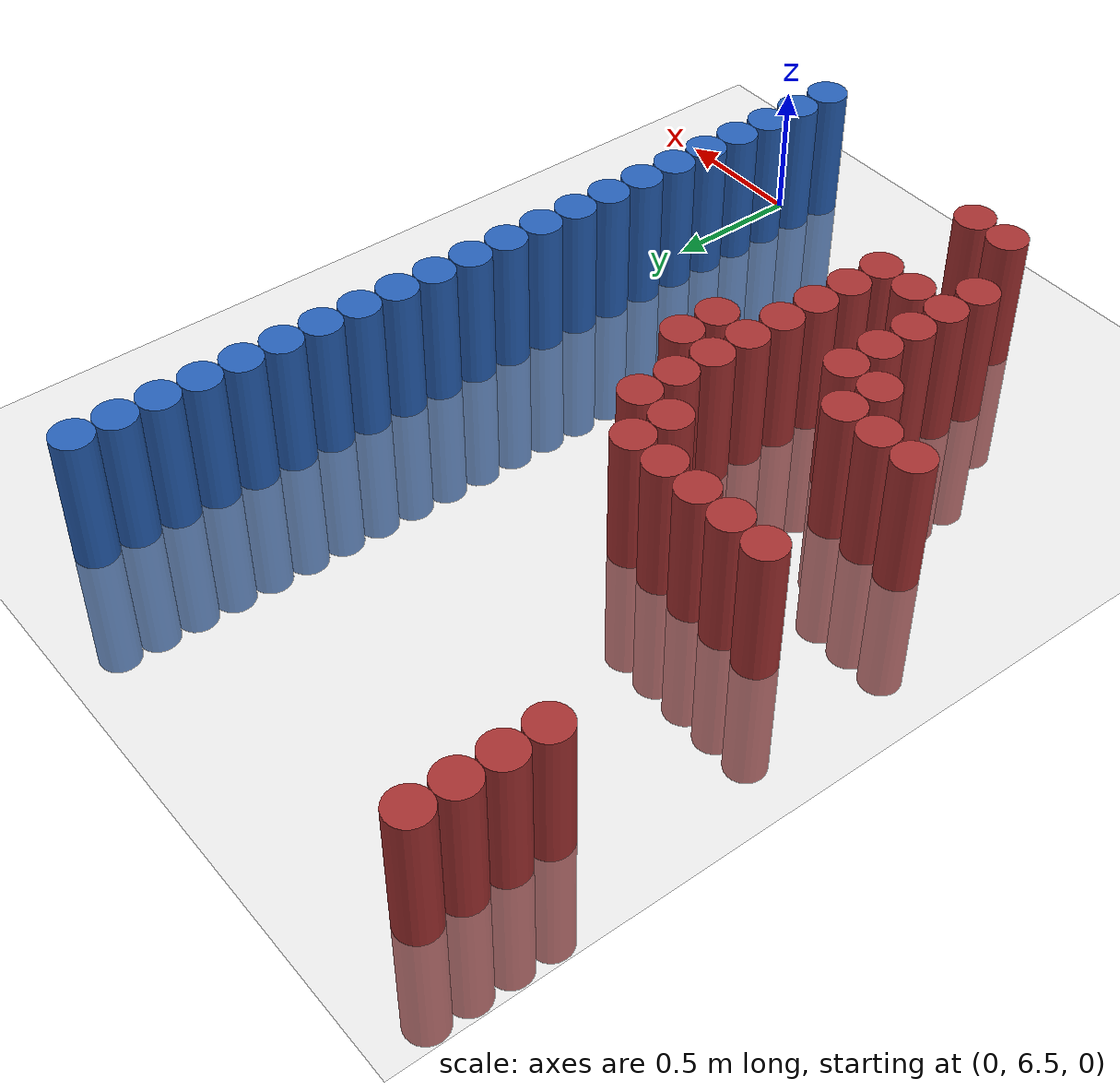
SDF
<sdf version="1.6">
 <world name="default">
  <model name="ground_plane">
   <static>1</static>
   <link name="link">
    <collision name="collision">
     <geometry><plane><normal>0 0 1</normal><size>100 100</size></plane></geometry>
     <surface><friction><ode><mu>100</mu><mu2>50</mu2></ode></friction></surface>
    </collision>
    <visual name="visual">
     <cast_shadows>0</cast_shadows>
     <geometry><plane><normal>0 0 1</normal><size>100 100</size></plane></geometry>
     <material>
      <script><uri>file://media/materials/scripts/gazebo.material</uri><name>Gazebo/Grey</name></script>
     </material>
    </visual>
   </link>
  </model>
  <model name="unit_cylinder_182">
   <static>1</static>
   <pose>-1.875000 9.075000 0.000000 0.000000 0.000000 0.000000</pose>
   <link name="link">
    <inertial>
     <mass>1</mass>
     <inertia><ixx>0.145833</ixx><ixy>0</ixy><ixz>0</ixz><iyy>0.145833</iyy><iyz>0</iyz><izz>0.125</izz></inertia>
    </inertial>
    <collision name="collision">
     <geometry><cylinder><radius>0.075000</radius><length>1</length></cylinder></geometry>
    </collision>
    <visual name="visual">
     <geometry><cylinder><radius>0.075000</radius><length>1</length></cylinder></geometry>
     <material>
      <ambient>0.648000 0.192000 0.192000 1</ambient>
      <diffuse>0.648000 0.192000 0.192000 1</diffuse>
     </material>
     <material>
      <script><name>Gazebo/Grey</name><uri>file://media/materials/scripts/gazebo.material</uri></script>
     </material>
    </visual>
   </link>
  </model>
  <model name="unit_cylinder_183">
   <static>1</static>
   <pose>-1.875000 9.225000 0.000000 0.000000 0.000000 0.000000</pose>
   <link name="link">
    <inertial>
     <mass>1</mass>
     <inertia><ixx>0.145833</ixx><ixy>0</ixy><ixz>0</ixz><iyy>0.145833</iyy><iyz>0</iyz><izz>0.125</izz></inertia>
    </inertial>
    <collision name="collision">
     <geometry><cylinder><radius>0.075000</radius><length>1</length></cylinder></geometry>
    </collision>
    <visual name="visual">
     <geometry><cylinder><radius>0.075000</radius><length>1</length></cylinder></geometry>
     <material>
      <ambient>0.648000 0.192000 0.192000 1</ambient>
      <diffuse>0.648000 0.192000 0.192000 1</diffuse>
     </material>
     <material>
      <script><name>Gazebo/Grey</name><uri>file://media/materials/scripts/gazebo.material</uri></script>
     </material>
    </visual>
   </link>
  </model>
  <model name="unit_cylinder_184">
   <static>1</static>
   <pose>-1.875000 9.375000 0.000000 0.000000 0.000000 0.000000</pose>
   <link name="link">
    <inertial>
     <mass>1</mass>
     <inertia><ixx>0.145833</ixx><ixy>0</ixy><ixz>0</ixz><iyy>0.145833</iyy><iyz>0</iyz><izz>0.125</izz></inertia>
    </inertial>
    <collision name="collision">
     <geometry><cylinder><radius>0.075000</radius><length>1</length></cylinder></geometry>
    </collision>
    <visual name="visual">
     <geometry><cylinder><radius>0.075000</radius><length>1</length></cylinder></geometry>
     <material>
      <ambient>0.648000 0.192000 0.192000 1</ambient>
      <diffuse>0.648000 0.192000 0.192000 1</diffuse>
     </material>
     <material>
      <script><name>Gazebo/Grey</name><uri>file://media/materials/scripts/gazebo.material</uri></script>
     </material>
    </visual>
   </link>
  </model>
  <model name="unit_cylinder_185">
   <static>1</static>
   <pose>-1.875000 9.525000 0.000000 0.000000 0.000000 0.000000</pose>
   <link name="link">
    <inertial>
     <mass>1</mass>
     <inertia><ixx>0.145833</ixx><ixy>0</ixy><ixz>0</ixz><iyy>0.145833</iyy><iyz>0</iyz><izz>0.125</izz></inertia>
    </inertial>
    <collision name="collision">
     <geometry><cylinder><radius>0.075000</radius><length>1</length></cylinder></geometry>
    </collision>
    <visual name="visual">
     <geometry><cylinder><radius>0.075000</radius><length>1</length></cylinder></geometry>
     <material>
      <ambient>0.648000 0.192000 0.192000 1</ambient>
      <diffuse>0.648000 0.192000 0.192000 1</diffuse>
     </material>
     <material>
      <script><name>Gazebo/Grey</name><uri>file://media/materials/scripts/gazebo.material</uri></script>
     </material>
    </visual>
   </link>
  </model>
  <model name="unit_cylinder_188">
   <static>1</static>
   <pose>-1.725000 7.575000 0.000000 0.000000 0.000000 0.000000</pose>
   <link name="link">
    <inertial>
     <mass>1</mass>
     <inertia><ixx>0.145833</ixx><ixy>0</ixy><ixz>0</ixz><iyy>0.145833</iyy><iyz>0</iyz><izz>0.125</izz></inertia>
    </inertial>
    <collision name="collision">
     <geometry><cylinder><radius>0.075000</radius><length>1</length></cylinder></geometry>
    </collision>
    <visual name="visual">
     <geometry><cylinder><radius>0.075000</radius><length>1</length></cylinder></geometry>
     <material>
      <ambient>0.648000 0.192000 0.192000 1</ambient>
      <diffuse>0.648000 0.192000 0.192000 1</diffuse>
     </material>
     <material>
      <script><name>Gazebo/Grey</name><uri>file://media/materials/scripts/gazebo.material</uri></script>
     </material>
    </visual>
   </link>
  </model>
  <model name="unit_cylinder_189">
   <static>1</static>
   <pose>-1.725000 8.175000 0.000000 0.000000 0.000000 0.000000</pose>
   <link name="link">
    <inertial>
     <mass>1</mass>
     <inertia><ixx>0.145833</ixx><ixy>0</ixy><ixz>0</ixz><iyy>0.145833</iyy><iyz>0</iyz><izz>0.125</izz></inertia>
    </inertial>
    <collision name="collision">
     <geometry><cylinder><radius>0.075000</radius><length>1</length></cylinder></geometry>
    </collision>
    <visual name="visual">
     <geometry><cylinder><radius>0.075000</radius><length>1</length></cylinder></geometry>
     <material>
      <ambient>0.648000 0.192000 0.192000 1</ambient>
      <diffuse>0.648000 0.192000 0.192000 1</diffuse>
     </material>
     <material>
      <script><name>Gazebo/Grey</name><uri>file://media/materials/scripts/gazebo.material</uri></script>
     </material>
    </visual>
   </link>
  </model>
  <model name="unit_cylinder_192">
   <static>1</static>
   <pose>-1.575000 7.575000 0.000000 0.000000 0.000000 0.000000</pose>
   <link name="link">
    <inertial>
     <mass>1</mass>
     <inertia><ixx>0.145833</ixx><ixy>0</ixy><ixz>0</ixz><iyy>0.145833</iyy><iyz>0</iyz><izz>0.125</izz></inertia>
    </inertial>
    <collision name="collision">
     <geometry><cylinder><radius>0.075000</radius><length>1</length></cylinder></geometry>
    </collision>
    <visual name="visual">
     <geometry><cylinder><radius>0.075000</radius><length>1</length></cylinder></geometry>
     <material>
      <ambient>0.648000 0.192000 0.192000 1</ambient>
      <diffuse>0.648000 0.192000 0.192000 1</diffuse>
     </material>
     <material>
      <script><name>Gazebo/Grey</name><uri>file://media/materials/scripts/gazebo.material</uri></script>
     </material>
    </visual>
   </link>
  </model>
  <model name="unit_cylinder_193">
   <static>1</static>
   <pose>-1.575000 8.175000 0.000000 0.000000 0.000000 0.000000</pose>
   <link name="link">
    <inertial>
     <mass>1</mass>
     <inertia><ixx>0.145833</ixx><ixy>0</ixy><ixz>0</ixz><iyy>0.145833</iyy><iyz>0</iyz><izz>0.125</izz></inertia>
    </inertial>
    <collision name="collision">
     <geometry><cylinder><radius>0.075000</radius><length>1</length></cylinder></geometry>
    </collision>
    <visual name="visual">
     <geometry><cylinder><radius>0.075000</radius><length>1</length></cylinder></geometry>
     <material>
      <ambient>0.648000 0.192000 0.192000 1</ambient>
      <diffuse>0.648000 0.192000 0.192000 1</diffuse>
     </material>
     <material>
      <script><name>Gazebo/Grey</name><uri>file://media/materials/scripts/gazebo.material</uri></script>
     </material>
    </visual>
   </link>
  </model>
  <model name="unit_cylinder_196">
   <static>1</static>
   <pose>-1.425000 7.425000 0.000000 0.000000 0.000000 0.000000</pose>
   <link name="link">
    <inertial>
     <mass>1</mass>
     <inertia><ixx>0.145833</ixx><ixy>0</ixy><ixz>0</ixz><iyy>0.145833</iyy><iyz>0</iyz><izz>0.125</izz></inertia>
    </inertial>
    <collision name="collision">
     <geometry><cylinder><radius>0.075000</radius><length>1</length></cylinder></geometry>
    </collision>
    <visual name="visual">
     <geometry><cylinder><radius>0.075000</radius><length>1</length></cylinder></geometry>
     <material>
      <ambient>0.648000 0.192000 0.192000 1</ambient>
      <diffuse>0.648000 0.192000 0.192000 1</diffuse>
     </material>
     <material>
      <script><name>Gazebo/Grey</name><uri>file://media/materials/scripts/gazebo.material</uri></script>
     </material>
    </visual>
   </link>
  </model>
  <model name="unit_cylinder_197">
   <static>1</static>
   <pose>-1.425000 7.575000 0.000000 0.000000 0.000000 0.000000</pose>
   <link name="link">
    <inertial>
     <mass>1</mass>
     <inertia><ixx>0.145833</ixx><ixy>0</ixy><ixz>0</ixz><iyy>0.145833</iyy><iyz>0</iyz><izz>0.125</izz></inertia>
    </inertial>
    <collision name="collision">
     <geometry><cylinder><radius>0.075000</radius><length>1</length></cylinder></geometry>
    </collision>
    <visual name="visual">
     <geometry><cylinder><radius>0.075000</radius><length>1</length></cylinder></geometry>
     <material>
      <ambient>0.648000 0.192000 0.192000 1</ambient>
      <diffuse>0.648000 0.192000 0.192000 1</diffuse>
     </material>
     <material>
      <script><name>Gazebo/Grey</name><uri>file://media/materials/scripts/gazebo.material</uri></script>
     </material>
    </visual>
   </link>
  </model>
  <model name="unit_cylinder_198">
   <static>1</static>
   <pose>-1.425000 8.175000 0.000000 0.000000 0.000000 0.000000</pose>
   <link name="link">
    <inertial>
     <mass>1</mass>
     <inertia><ixx>0.145833</ixx><ixy>0</ixy><ixz>0</ixz><iyy>0.145833</iyy><iyz>0</iyz><izz>0.125</izz></inertia>
    </inertial>
    <collision name="collision">
     <geometry><cylinder><radius>0.075000</radius><length>1</length></cylinder></geometry>
    </collision>
    <visual name="visual">
     <geometry><cylinder><radius>0.075000</radius><length>1</length></cylinder></geometry>
     <material>
      <ambient>0.648000 0.192000 0.192000 1</ambient>
      <diffuse>0.648000 0.192000 0.192000 1</diffuse>
     </material>
     <material>
      <script><name>Gazebo/Grey</name><uri>file://media/materials/scripts/gazebo.material</uri></script>
     </material>
    </visual>
   </link>
  </model>
  <model name="unit_cylinder_204">
   <static>1</static>
   <pose>-1.275000 6.825000 0.000000 0.000000 0.000000 0.000000</pose>
   <link name="link">
    <inertial>
     <mass>1</mass>
     <inertia><ixx>0.145833</ixx><ixy>0</ixy><ixz>0</ixz><iyy>0.145833</iyy><iyz>0</iyz><izz>0.125</izz></inertia>
    </inertial>
    <collision name="collision">
     <geometry><cylinder><radius>0.075000</radius><length>1</length></cylinder></geometry>
    </collision>
    <visual name="visual">
     <geometry><cylinder><radius>0.075000</radius><length>1</length></cylinder></geometry>
     <material>
      <ambient>0.648000 0.192000 0.192000 1</ambient>
      <diffuse>0.648000 0.192000 0.192000 1</diffuse>
     </material>
     <material>
      <script><name>Gazebo/Grey</name><uri>file://media/materials/scripts/gazebo.material</uri></script>
     </material>
    </visual>
   </link>
  </model>
  <model name="unit_cylinder_205">
   <static>1</static>
   <pose>-1.275000 6.975000 0.000000 0.000000 0.000000 0.000000</pose>
   <link name="link">
    <inertial>
     <mass>1</mass>
     <inertia><ixx>0.145833</ixx><ixy>0</ixy><ixz>0</ixz><iyy>0.145833</iyy><iyz>0</iyz><izz>0.125</izz></inertia>
    </inertial>
    <collision name="collision">
     <geometry><cylinder><radius>0.075000</radius><length>1</length></cylinder></geometry>
    </collision>
    <visual name="visual">
     <geometry><cylinder><radius>0.075000</radius><length>1</length></cylinder></geometry>
     <material>
      <ambient>0.648000 0.192000 0.192000 1</ambient>
      <diffuse>0.648000 0.192000 0.192000 1</diffuse>
     </material>
     <material>
      <script><name>Gazebo/Grey</name><uri>file://media/materials/scripts/gazebo.material</uri></script>
     </material>
    </visual>
   </link>
  </model>
  <model name="unit_cylinder_206">
   <static>1</static>
   <pose>-1.275000 7.125000 0.000000 0.000000 0.000000 0.000000</pose>
   <link name="link">
    <inertial>
     <mass>1</mass>
     <inertia><ixx>0.145833</ixx><ixy>0</ixy><ixz>0</ixz><iyy>0.145833</iyy><iyz>0</iyz><izz>0.125</izz></inertia>
    </inertial>
    <collision name="collision">
     <geometry><cylinder><radius>0.075000</radius><length>1</length></cylinder></geometry>
    </collision>
    <visual name="visual">
     <geometry><cylinder><radius>0.075000</radius><length>1</length></cylinder></geometry>
     <material>
      <ambient>0.648000 0.192000 0.192000 1</ambient>
      <diffuse>0.648000 0.192000 0.192000 1</diffuse>
     </material>
     <material>
      <script><name>Gazebo/Grey</name><uri>file://media/materials/scripts/gazebo.material</uri></script>
     </material>
    </visual>
   </link>
  </model>
  <model name="unit_cylinder_207">
   <static>1</static>
   <pose>-1.275000 7.275000 0.000000 0.000000 0.000000 0.000000</pose>
   <link name="link">
    <inertial>
     <mass>1</mass>
     <inertia><ixx>0.145833</ixx><ixy>0</ixy><ixz>0</ixz><iyy>0.145833</iyy><iyz>0</iyz><izz>0.125</izz></inertia>
    </inertial>
    <collision name="collision">
     <geometry><cylinder><radius>0.075000</radius><length>1</length></cylinder></geometry>
    </collision>
    <visual name="visual">
     <geometry><cylinder><radius>0.075000</radius><length>1</length></cylinder></geometry>
     <material>
      <ambient>0.648000 0.192000 0.192000 1</ambient>
      <diffuse>0.648000 0.192000 0.192000 1</diffuse>
     </material>
     <material>
      <script><name>Gazebo/Grey</name><uri>file://media/materials/scripts/gazebo.material</uri></script>
     </material>
    </visual>
   </link>
  </model>
  <model name="unit_cylinder_208">
   <static>1</static>
   <pose>-1.275000 7.425000 0.000000 0.000000 0.000000 0.000000</pose>
   <link name="link">
    <inertial>
     <mass>1</mass>
     <inertia><ixx>0.145833</ixx><ixy>0</ixy><ixz>0</ixz><iyy>0.145833</iyy><iyz>0</iyz><izz>0.125</izz></inertia>
    </inertial>
    <collision name="collision">
     <geometry><cylinder><radius>0.075000</radius><length>1</length></cylinder></geometry>
    </collision>
    <visual name="visual">
     <geometry><cylinder><radius>0.075000</radius><length>1</length></cylinder></geometry>
     <material>
      <ambient>0.648000 0.192000 0.192000 1</ambient>
      <diffuse>0.648000 0.192000 0.192000 1</diffuse>
     </material>
     <material>
      <script><name>Gazebo/Grey</name><uri>file://media/materials/scripts/gazebo.material</uri></script>
     </material>
    </visual>
   </link>
  </model>
  <model name="unit_cylinder_209">
   <static>1</static>
   <pose>-1.275000 8.175000 0.000000 0.000000 0.000000 0.000000</pose>
   <link name="link">
    <inertial>
     <mass>1</mass>
     <inertia><ixx>0.145833</ixx><ixy>0</ixy><ixz>0</ixz><iyy>0.145833</iyy><iyz>0</iyz><izz>0.125</izz></inertia>
    </inertial>
    <collision name="collision">
     <geometry><cylinder><radius>0.075000</radius><length>1</length></cylinder></geometry>
    </collision>
    <visual name="visual">
     <geometry><cylinder><radius>0.075000</radius><length>1</length></cylinder></geometry>
     <material>
      <ambient>0.648000 0.192000 0.192000 1</ambient>
      <diffuse>0.648000 0.192000 0.192000 1</diffuse>
     </material>
     <material>
      <script><name>Gazebo/Grey</name><uri>file://media/materials/scripts/gazebo.material</uri></script>
     </material>
    </visual>
   </link>
  </model>
  <model name="unit_cylinder_213">
   <static>1</static>
   <pose>-1.125000 6.525000 0.000000 0.000000 0.000000 0.000000</pose>
   <link name="link">
    <inertial>
     <mass>1</mass>
     <inertia><ixx>0.145833</ixx><ixy>0</ixy><ixz>0</ixz><iyy>0.145833</iyy><iyz>0</iyz><izz>0.125</izz></inertia>
    </inertial>
    <collision name="collision">
     <geometry><cylinder><radius>0.075000</radius><length>1</length></cylinder></geometry>
    </collision>
    <visual name="visual">
     <geometry><cylinder><radius>0.075000</radius><length>1</length></cylinder></geometry>
     <material>
      <ambient>0.648000 0.192000 0.192000 1</ambient>
      <diffuse>0.648000 0.192000 0.192000 1</diffuse>
     </material>
     <material>
      <script><name>Gazebo/Grey</name><uri>file://media/materials/scripts/gazebo.material</uri></script>
     </material>
    </visual>
   </link>
  </model>
  <model name="unit_cylinder_214">
   <static>1</static>
   <pose>-1.125000 6.975000 0.000000 0.000000 0.000000 0.000000</pose>
   <link name="link">
    <inertial>
     <mass>1</mass>
     <inertia><ixx>0.145833</ixx><ixy>0</ixy><ixz>0</ixz><iyy>0.145833</iyy><iyz>0</iyz><izz>0.125</izz></inertia>
    </inertial>
    <collision name="collision">
     <geometry><cylinder><radius>0.075000</radius><length>1</length></cylinder></geometry>
    </collision>
    <visual name="visual">
     <geometry><cylinder><radius>0.075000</radius><length>1</length></cylinder></geometry>
     <material>
      <ambient>0.648000 0.192000 0.192000 1</ambient>
      <diffuse>0.648000 0.192000 0.192000 1</diffuse>
     </material>
     <material>
      <script><name>Gazebo/Grey</name><uri>file://media/materials/scripts/gazebo.material</uri></script>
     </material>
    </visual>
   </link>
  </model>
  <model name="unit_cylinder_215">
   <static>1</static>
   <pose>-1.125000 8.025000 0.000000 0.000000 0.000000 0.000000</pose>
   <link name="link">
    <inertial>
     <mass>1</mass>
     <inertia><ixx>0.145833</ixx><ixy>0</ixy><ixz>0</ixz><iyy>0.145833</iyy><iyz>0</iyz><izz>0.125</izz></inertia>
    </inertial>
    <collision name="collision">
     <geometry><cylinder><radius>0.075000</radius><length>1</length></cylinder></geometry>
    </collision>
    <visual name="visual">
     <geometry><cylinder><radius>0.075000</radius><length>1</length></cylinder></geometry>
     <material>
      <ambient>0.648000 0.192000 0.192000 1</ambient>
      <diffuse>0.648000 0.192000 0.192000 1</diffuse>
     </material>
     <material>
      <script><name>Gazebo/Grey</name><uri>file://media/materials/scripts/gazebo.material</uri></script>
     </material>
    </visual>
   </link>
  </model>
  <model name="unit_cylinder_216">
   <static>1</static>
   <pose>-1.125000 8.175000 0.000000 0.000000 0.000000 0.000000</pose>
   <link name="link">
    <inertial>
     <mass>1</mass>
     <inertia><ixx>0.145833</ixx><ixy>0</ixy><ixz>0</ixz><iyy>0.145833</iyy><iyz>0</iyz><izz>0.125</izz></inertia>
    </inertial>
    <collision name="collision">
     <geometry><cylinder><radius>0.075000</radius><length>1</length></cylinder></geometry>
    </collision>
    <visual name="visual">
     <geometry><cylinder><radius>0.075000</radius><length>1</length></cylinder></geometry>
     <material>
      <ambient>0.648000 0.192000 0.192000 1</ambient>
      <diffuse>0.648000 0.192000 0.192000 1</diffuse>
     </material>
     <material>
      <script><name>Gazebo/Grey</name><uri>file://media/materials/scripts/gazebo.material</uri></script>
     </material>
    </visual>
   </link>
  </model>
  <model name="unit_cylinder_220">
   <static>1</static>
   <pose>-0.975000 6.525000 0.000000 0.000000 0.000000 0.000000</pose>
   <link name="link">
    <inertial>
     <mass>1</mass>
     <inertia><ixx>0.145833</ixx><ixy>0</ixy><ixz>0</ixz><iyy>0.145833</iyy><iyz>0</iyz><izz>0.125</izz></inertia>
    </inertial>
    <collision name="collision">
     <geometry><cylinder><radius>0.075000</radius><length>1</length></cylinder></geometry>
    </collision>
    <visual name="visual">
     <geometry><cylinder><radius>0.075000</radius><length>1</length></cylinder></geometry>
     <material>
      <ambient>0.648000 0.192000 0.192000 1</ambient>
      <diffuse>0.648000 0.192000 0.192000 1</diffuse>
     </material>
     <material>
      <script><name>Gazebo/Grey</name><uri>file://media/materials/scripts/gazebo.material</uri></script>
     </material>
    </visual>
   </link>
  </model>
  <model name="unit_cylinder_221">
   <static>1</static>
   <pose>-0.975000 6.975000 0.000000 0.000000 0.000000 0.000000</pose>
   <link name="link">
    <inertial>
     <mass>1</mass>
     <inertia><ixx>0.145833</ixx><ixy>0</ixy><ixz>0</ixz><iyy>0.145833</iyy><iyz>0</iyz><izz>0.125</izz></inertia>
    </inertial>
    <collision name="collision">
     <geometry><cylinder><radius>0.075000</radius><length>1</length></cylinder></geometry>
    </collision>
    <visual name="visual">
     <geometry><cylinder><radius>0.075000</radius><length>1</length></cylinder></geometry>
     <material>
      <ambient>0.648000 0.192000 0.192000 1</ambient>
      <diffuse>0.648000 0.192000 0.192000 1</diffuse>
     </material>
     <material>
      <script><name>Gazebo/Grey</name><uri>file://media/materials/scripts/gazebo.material</uri></script>
     </material>
    </visual>
   </link>
  </model>
  <model name="unit_cylinder_222">
   <static>1</static>
   <pose>-0.975000 7.125000 0.000000 0.000000 0.000000 0.000000</pose>
   <link name="link">
    <inertial>
     <mass>1</mass>
     <inertia><ixx>0.145833</ixx><ixy>0</ixy><ixz>0</ixz><iyy>0.145833</iyy><iyz>0</iyz><izz>0.125</izz></inertia>
    </inertial>
    <collision name="collision">
     <geometry><cylinder><radius>0.075000</radius><length>1</length></cylinder></geometry>
    </collision>
    <visual name="visual">
     <geometry><cylinder><radius>0.075000</radius><length>1</length></cylinder></geometry>
     <material>
      <ambient>0.648000 0.192000 0.192000 1</ambient>
      <diffuse>0.648000 0.192000 0.192000 1</diffuse>
     </material>
     <material>
      <script><name>Gazebo/Grey</name><uri>file://media/materials/scripts/gazebo.material</uri></script>
     </material>
    </visual>
   </link>
  </model>
  <model name="unit_cylinder_223">
   <static>1</static>
   <pose>-0.975000 7.275000 0.000000 0.000000 0.000000 0.000000</pose>
   <link name="link">
    <inertial>
     <mass>1</mass>
     <inertia><ixx>0.145833</ixx><ixy>0</ixy><ixz>0</ixz><iyy>0.145833</iyy><iyz>0</iyz><izz>0.125</izz></inertia>
    </inertial>
    <collision name="collision">
     <geometry><cylinder><radius>0.075000</radius><length>1</length></cylinder></geometry>
    </collision>
    <visual name="visual">
     <geometry><cylinder><radius>0.075000</radius><length>1</length></cylinder></geometry>
     <material>
      <ambient>0.648000 0.192000 0.192000 1</ambient>
      <diffuse>0.648000 0.192000 0.192000 1</diffuse>
     </material>
     <material>
      <script><name>Gazebo/Grey</name><uri>file://media/materials/scripts/gazebo.material</uri></script>
     </material>
    </visual>
   </link>
  </model>
  <model name="unit_cylinder_224">
   <static>1</static>
   <pose>-0.975000 7.425000 0.000000 0.000000 0.000000 0.000000</pose>
   <link name="link">
    <inertial>
     <mass>1</mass>
     <inertia><ixx>0.145833</ixx><ixy>0</ixy><ixz>0</ixz><iyy>0.145833</iyy><iyz>0</iyz><izz>0.125</izz></inertia>
    </inertial>
    <collision name="collision">
     <geometry><cylinder><radius>0.075000</radius><length>1</length></cylinder></geometry>
    </collision>
    <visual name="visual">
     <geometry><cylinder><radius>0.075000</radius><length>1</length></cylinder></geometry>
     <material>
      <ambient>0.648000 0.192000 0.192000 1</ambient>
      <diffuse>0.648000 0.192000 0.192000 1</diffuse>
     </material>
     <material>
      <script><name>Gazebo/Grey</name><uri>file://media/materials/scripts/gazebo.material</uri></script>
     </material>
    </visual>
   </link>
  </model>
  <model name="unit_cylinder_225">
   <static>1</static>
   <pose>-0.975000 7.575000 0.000000 0.000000 0.000000 0.000000</pose>
   <link name="link">
    <inertial>
     <mass>1</mass>
     <inertia><ixx>0.145833</ixx><ixy>0</ixy><ixz>0</ixz><iyy>0.145833</iyy><iyz>0</iyz><izz>0.125</izz></inertia>
    </inertial>
    <collision name="collision">
     <geometry><cylinder><radius>0.075000</radius><length>1</length></cylinder></geometry>
    </collision>
    <visual name="visual">
     <geometry><cylinder><radius>0.075000</radius><length>1</length></cylinder></geometry>
     <material>
      <ambient>0.648000 0.192000 0.192000 1</ambient>
      <diffuse>0.648000 0.192000 0.192000 1</diffuse>
     </material>
     <material>
      <script><name>Gazebo/Grey</name><uri>file://media/materials/scripts/gazebo.material</uri></script>
     </material>
    </visual>
   </link>
  </model>
  <model name="unit_cylinder_226">
   <static>1</static>
   <pose>-0.975000 7.725000 0.000000 0.000000 0.000000 0.000000</pose>
   <link name="link">
    <inertial>
     <mass>1</mass>
     <inertia><ixx>0.145833</ixx><ixy>0</ixy><ixz>0</ixz><iyy>0.145833</iyy><iyz>0</iyz><izz>0.125</izz></inertia>
    </inertial>
    <collision name="collision">
     <geometry><cylinder><radius>0.075000</radius><length>1</length></cylinder></geometry>
    </collision>
    <visual name="visual">
     <geometry><cylinder><radius>0.075000</radius><length>1</length></cylinder></geometry>
     <material>
      <ambient>0.648000 0.192000 0.192000 1</ambient>
      <diffuse>0.648000 0.192000 0.192000 1</diffuse>
     </material>
     <material>
      <script><name>Gazebo/Grey</name><uri>file://media/materials/scripts/gazebo.material</uri></script>
     </material>
    </visual>
   </link>
  </model>
  <model name="unit_cylinder_227">
   <static>1</static>
   <pose>-0.975000 7.875000 0.000000 0.000000 0.000000 0.000000</pose>
   <link name="link">
    <inertial>
     <mass>1</mass>
     <inertia><ixx>0.145833</ixx><ixy>0</ixy><ixz>0</ixz><iyy>0.145833</iyy><iyz>0</iyz><izz>0.125</izz></inertia>
    </inertial>
    <collision name="collision">
     <geometry><cylinder><radius>0.075000</radius><length>1</length></cylinder></geometry>
    </collision>
    <visual name="visual">
     <geometry><cylinder><radius>0.075000</radius><length>1</length></cylinder></geometry>
     <material>
      <ambient>0.648000 0.192000 0.192000 1</ambient>
      <diffuse>0.648000 0.192000 0.192000 1</diffuse>
     </material>
     <material>
      <script><name>Gazebo/Grey</name><uri>file://media/materials/scripts/gazebo.material</uri></script>
     </material>
    </visual>
   </link>
  </model>
  <model name="unit_cylinder_228">
   <static>1</static>
   <pose>-0.975000 8.025000 0.000000 0.000000 0.000000 0.000000</pose>
   <link name="link">
    <inertial>
     <mass>1</mass>
     <inertia><ixx>0.145833</ixx><ixy>0</ixy><ixz>0</ixz><iyy>0.145833</iyy><iyz>0</iyz><izz>0.125</izz></inertia>
    </inertial>
    <collision name="collision">
     <geometry><cylinder><radius>0.075000</radius><length>1</length></cylinder></geometry>
    </collision>
    <visual name="visual">
     <geometry><cylinder><radius>0.075000</radius><length>1</length></cylinder></geometry>
     <material>
      <ambient>0.648000 0.192000 0.192000 1</ambient>
      <diffuse>0.648000 0.192000 0.192000 1</diffuse>
     </material>
     <material>
      <script><name>Gazebo/Grey</name><uri>file://media/materials/scripts/gazebo.material</uri></script>
     </material>
    </visual>
   </link>
  </model>
  <model name="unit_cylinder_235">
   <static>1</static>
   <pose>-0.825000 7.575000 0.000000 0.000000 0.000000 0.000000</pose>
   <link name="link">
    <inertial>
     <mass>1</mass>
     <inertia><ixx>0.145833</ixx><ixy>0</ixy><ixz>0</ixz><iyy>0.145833</iyy><iyz>0</iyz><izz>0.125</izz></inertia>
    </inertial>
    <collision name="collision">
     <geometry><cylinder><radius>0.075000</radius><length>1</length></cylinder></geometry>
    </collision>
    <visual name="visual">
     <geometry><cylinder><radius>0.075000</radius><length>1</length></cylinder></geometry>
     <material>
      <ambient>0.648000 0.192000 0.192000 1</ambient>
      <diffuse>0.648000 0.192000 0.192000 1</diffuse>
     </material>
     <material>
      <script><name>Gazebo/Grey</name><uri>file://media/materials/scripts/gazebo.material</uri></script>
     </material>
    </visual>
   </link>
  </model>
  <model name="unit_cylinder_236">
   <static>1</static>
   <pose>-0.825000 7.725000 0.000000 0.000000 0.000000 0.000000</pose>
   <link name="link">
    <inertial>
     <mass>1</mass>
     <inertia><ixx>0.145833</ixx><ixy>0</ixy><ixz>0</ixz><iyy>0.145833</iyy><iyz>0</iyz><izz>0.125</izz></inertia>
    </inertial>
    <collision name="collision">
     <geometry><cylinder><radius>0.075000</radius><length>1</length></cylinder></geometry>
    </collision>
    <visual name="visual">
     <geometry><cylinder><radius>0.075000</radius><length>1</length></cylinder></geometry>
     <material>
      <ambient>0.648000 0.192000 0.192000 1</ambient>
      <diffuse>0.648000 0.192000 0.192000 1</diffuse>
     </material>
     <material>
      <script><name>Gazebo/Grey</name><uri>file://media/materials/scripts/gazebo.material</uri></script>
     </material>
    </visual>
   </link>
  </model>
  <model name="unit_cylinder_246">
   <static>1</static>
   <pose>-0.075000 6.375000 0.000000 0.000000 0.000000 0.000000</pose>
   <link name="link">
    <inertial>
     <mass>1</mass>
     <inertia><ixx>0.145833</ixx><ixy>0</ixy><ixz>0</ixz><iyy>0.145833</iyy><iyz>0</iyz><izz>0.125</izz></inertia>
    </inertial>
    <collision name="collision">
     <geometry><cylinder><radius>0.075000</radius><length>1</length></cylinder></geometry>
    </collision>
    <visual name="visual">
     <geometry><cylinder><radius>0.075000</radius><length>1</length></cylinder></geometry>
     <material>
      <ambient>0.152000 0.379000 0.720000 1</ambient>
      <diffuse>0.152000 0.379000 0.720000 1</diffuse>
     </material>
     <material>
      <script><name>Gazebo/Grey</name><uri>file://media/materials/scripts/gazebo.material</uri></script>
     </material>
    </visual>
   </link>
  </model>
  <model name="unit_cylinder_247">
   <static>1</static>
   <pose>-0.075000 6.525000 0.000000 0.000000 0.000000 0.000000</pose>
   <link name="link">
    <inertial>
     <mass>1</mass>
     <inertia><ixx>0.145833</ixx><ixy>0</ixy><ixz>0</ixz><iyy>0.145833</iyy><iyz>0</iyz><izz>0.125</izz></inertia>
    </inertial>
    <collision name="collision">
     <geometry><cylinder><radius>0.075000</radius><length>1</length></cylinder></geometry>
    </collision>
    <visual name="visual">
     <geometry><cylinder><radius>0.075000</radius><length>1</length></cylinder></geometry>
     <material>
      <ambient>0.152000 0.379000 0.720000 1</ambient>
      <diffuse>0.152000 0.379000 0.720000 1</diffuse>
     </material>
     <material>
      <script><name>Gazebo/Grey</name><uri>file://media/materials/scripts/gazebo.material</uri></script>
     </material>
    </visual>
   </link>
  </model>
  <model name="unit_cylinder_248">
   <static>1</static>
   <pose>-0.075000 6.675000 0.000000 0.000000 0.000000 0.000000</pose>
   <link name="link">
    <inertial>
     <mass>1</mass>
     <inertia><ixx>0.145833</ixx><ixy>0</ixy><ixz>0</ixz><iyy>0.145833</iyy><iyz>0</iyz><izz>0.125</izz></inertia>
    </inertial>
    <collision name="collision">
     <geometry><cylinder><radius>0.075000</radius><length>1</length></cylinder></geometry>
    </collision>
    <visual name="visual">
     <geometry><cylinder><radius>0.075000</radius><length>1</length></cylinder></geometry>
     <material>
      <ambient>0.152000 0.379000 0.720000 1</ambient>
      <diffuse>0.152000 0.379000 0.720000 1</diffuse>
     </material>
     <material>
      <script><name>Gazebo/Grey</name><uri>file://media/materials/scripts/gazebo.material</uri></script>
     </material>
    </visual>
   </link>
  </model>
  <model name="unit_cylinder_249">
   <static>1</static>
   <pose>-0.075000 6.825000 0.000000 0.000000 0.000000 0.000000</pose>
   <link name="link">
    <inertial>
     <mass>1</mass>
     <inertia><ixx>0.145833</ixx><ixy>0</ixy><ixz>0</ixz><iyy>0.145833</iyy><iyz>0</iyz><izz>0.125</izz></inertia>
    </inertial>
    <collision name="collision">
     <geometry><cylinder><radius>0.075000</radius><length>1</length></cylinder></geometry>
    </collision>
    <visual name="visual">
     <geometry><cylinder><radius>0.075000</radius><length>1</length></cylinder></geometry>
     <material>
      <ambient>0.152000 0.379000 0.720000 1</ambient>
      <diffuse>0.152000 0.379000 0.720000 1</diffuse>
     </material>
     <material>
      <script><name>Gazebo/Grey</name><uri>file://media/materials/scripts/gazebo.material</uri></script>
     </material>
    </visual>
   </link>
  </model>
  <model name="unit_cylinder_250">
   <static>1</static>
   <pose>-0.075000 6.975000 0.000000 0.000000 0.000000 0.000000</pose>
   <link name="link">
    <inertial>
     <mass>1</mass>
     <inertia><ixx>0.145833</ixx><ixy>0</ixy><ixz>0</ixz><iyy>0.145833</iyy><iyz>0</iyz><izz>0.125</izz></inertia>
    </inertial>
    <collision name="collision">
     <geometry><cylinder><radius>0.075000</radius><length>1</length></cylinder></geometry>
    </collision>
    <visual name="visual">
     <geometry><cylinder><radius>0.075000</radius><length>1</length></cylinder></geometry>
     <material>
      <ambient>0.152000 0.379000 0.720000 1</ambient>
      <diffuse>0.152000 0.379000 0.720000 1</diffuse>
     </material>
     <material>
      <script><name>Gazebo/Grey</name><uri>file://media/materials/scripts/gazebo.material</uri></script>
     </material>
    </visual>
   </link>
  </model>
  <model name="unit_cylinder_251">
   <static>1</static>
   <pose>-0.075000 7.125000 0.000000 0.000000 0.000000 0.000000</pose>
   <link name="link">
    <inertial>
     <mass>1</mass>
     <inertia><ixx>0.145833</ixx><ixy>0</ixy><ixz>0</ixz><iyy>0.145833</iyy><iyz>0</iyz><izz>0.125</izz></inertia>
    </inertial>
    <collision name="collision">
     <geometry><cylinder><radius>0.075000</radius><length>1</length></cylinder></geometry>
    </collision>
    <visual name="visual">
     <geometry><cylinder><radius>0.075000</radius><length>1</length></cylinder></geometry>
     <material>
      <ambient>0.152000 0.379000 0.720000 1</ambient>
      <diffuse>0.152000 0.379000 0.720000 1</diffuse>
     </material>
     <material>
      <script><name>Gazebo/Grey</name><uri>file://media/materials/scripts/gazebo.material</uri></script>
     </material>
    </visual>
   </link>
  </model>
  <model name="unit_cylinder_252">
   <static>1</static>
   <pose>-0.075000 7.275000 0.000000 0.000000 0.000000 0.000000</pose>
   <link name="link">
    <inertial>
     <mass>1</mass>
     <inertia><ixx>0.145833</ixx><ixy>0</ixy><ixz>0</ixz><iyy>0.145833</iyy><iyz>0</iyz><izz>0.125</izz></inertia>
    </inertial>
    <collision name="collision">
     <geometry><cylinder><radius>0.075000</radius><length>1</length></cylinder></geometry>
    </collision>
    <visual name="visual">
     <geometry><cylinder><radius>0.075000</radius><length>1</length></cylinder></geometry>
     <material>
      <ambient>0.152000 0.379000 0.720000 1</ambient>
      <diffuse>0.152000 0.379000 0.720000 1</diffuse>
     </material>
     <material>
      <script><name>Gazebo/Grey</name><uri>file://media/materials/scripts/gazebo.material</uri></script>
     </material>
    </visual>
   </link>
  </model>
  <model name="unit_cylinder_253">
   <static>1</static>
   <pose>-0.075000 7.425000 0.000000 0.000000 0.000000 0.000000</pose>
   <link name="link">
    <inertial>
     <mass>1</mass>
     <inertia><ixx>0.145833</ixx><ixy>0</ixy><ixz>0</ixz><iyy>0.145833</iyy><iyz>0</iyz><izz>0.125</izz></inertia>
    </inertial>
    <collision name="collision">
     <geometry><cylinder><radius>0.075000</radius><length>1</length></cylinder></geometry>
    </collision>
    <visual name="visual">
     <geometry><cylinder><radius>0.075000</radius><length>1</length></cylinder></geometry>
     <material>
      <ambient>0.152000 0.379000 0.720000 1</ambient>
      <diffuse>0.152000 0.379000 0.720000 1</diffuse>
     </material>
     <material>
      <script><name>Gazebo/Grey</name><uri>file://media/materials/scripts/gazebo.material</uri></script>
     </material>
    </visual>
   </link>
  </model>
  <model name="unit_cylinder_254">
   <static>1</static>
   <pose>-0.075000 7.575000 0.000000 0.000000 0.000000 0.000000</pose>
   <link name="link">
    <inertial>
     <mass>1</mass>
     <inertia><ixx>0.145833</ixx><ixy>0</ixy><ixz>0</ixz><iyy>0.145833</iyy><iyz>0</iyz><izz>0.125</izz></inertia>
    </inertial>
    <collision name="collision">
     <geometry><cylinder><radius>0.075000</radius><length>1</length></cylinder></geometry>
    </collision>
    <visual name="visual">
     <geometry><cylinder><radius>0.075000</radius><length>1</length></cylinder></geometry>
     <material>
      <ambient>0.152000 0.379000 0.720000 1</ambient>
      <diffuse>0.152000 0.379000 0.720000 1</diffuse>
     </material>
     <material>
      <script><name>Gazebo/Grey</name><uri>file://media/materials/scripts/gazebo.material</uri></script>
     </material>
    </visual>
   </link>
  </model>
  <model name="unit_cylinder_255">
   <static>1</static>
   <pose>-0.075000 7.725000 0.000000 0.000000 0.000000 0.000000</pose>
   <link name="link">
    <inertial>
     <mass>1</mass>
     <inertia><ixx>0.145833</ixx><ixy>0</ixy><ixz>0</ixz><iyy>0.145833</iyy><iyz>0</iyz><izz>0.125</izz></inertia>
    </inertial>
    <collision name="collision">
     <geometry><cylinder><radius>0.075000</radius><length>1</length></cylinder></geometry>
    </collision>
    <visual name="visual">
     <geometry><cylinder><radius>0.075000</radius><length>1</length></cylinder></geometry>
     <material>
      <ambient>0.152000 0.379000 0.720000 1</ambient>
      <diffuse>0.152000 0.379000 0.720000 1</diffuse>
     </material>
     <material>
      <script><name>Gazebo/Grey</name><uri>file://media/materials/scripts/gazebo.material</uri></script>
     </material>
    </visual>
   </link>
  </model>
  <model name="unit_cylinder_256">
   <static>1</static>
   <pose>-0.075000 7.875000 0.000000 0.000000 0.000000 0.000000</pose>
   <link name="link">
    <inertial>
     <mass>1</mass>
     <inertia><ixx>0.145833</ixx><ixy>0</ixy><ixz>0</ixz><iyy>0.145833</iyy><iyz>0</iyz><izz>0.125</izz></inertia>
    </inertial>
    <collision name="collision">
     <geometry><cylinder><radius>0.075000</radius><length>1</length></cylinder></geometry>
    </collision>
    <visual name="visual">
     <geometry><cylinder><radius>0.075000</radius><length>1</length></cylinder></geometry>
     <material>
      <ambient>0.152000 0.379000 0.720000 1</ambient>
      <diffuse>0.152000 0.379000 0.720000 1</diffuse>
     </material>
     <material>
      <script><name>Gazebo/Grey</name><uri>file://media/materials/scripts/gazebo.material</uri></script>
     </material>
    </visual>
   </link>
  </model>
  <model name="unit_cylinder_257">
   <static>1</static>
   <pose>-0.075000 8.025000 0.000000 0.000000 0.000000 0.000000</pose>
   <link name="link">
    <inertial>
     <mass>1</mass>
     <inertia><ixx>0.145833</ixx><ixy>0</ixy><ixz>0</ixz><iyy>0.145833</iyy><iyz>0</iyz><izz>0.125</izz></inertia>
    </inertial>
    <collision name="collision">
     <geometry><cylinder><radius>0.075000</radius><length>1</length></cylinder></geometry>
    </collision>
    <visual name="visual">
     <geometry><cylinder><radius>0.075000</radius><length>1</length></cylinder></geometry>
     <material>
      <ambient>0.152000 0.379000 0.720000 1</ambient>
      <diffuse>0.152000 0.379000 0.720000 1</diffuse>
     </material>
     <material>
      <script><name>Gazebo/Grey</name><uri>file://media/materials/scripts/gazebo.material</uri></script>
     </material>
    </visual>
   </link>
  </model>
  <model name="unit_cylinder_258">
   <static>1</static>
   <pose>-0.075000 8.175000 0.000000 0.000000 0.000000 0.000000</pose>
   <link name="link">
    <inertial>
     <mass>1</mass>
     <inertia><ixx>0.145833</ixx><ixy>0</ixy><ixz>0</ixz><iyy>0.145833</iyy><iyz>0</iyz><izz>0.125</izz></inertia>
    </inertial>
    <collision name="collision">
     <geometry><cylinder><radius>0.075000</radius><length>1</length></cylinder></geometry>
    </collision>
    <visual name="visual">
     <geometry><cylinder><radius>0.075000</radius><length>1</length></cylinder></geometry>
     <material>
      <ambient>0.152000 0.379000 0.720000 1</ambient>
      <diffuse>0.152000 0.379000 0.720000 1</diffuse>
     </material>
     <material>
      <script><name>Gazebo/Grey</name><uri>file://media/materials/scripts/gazebo.material</uri></script>
     </material>
    </visual>
   </link>
  </model>
  <model name="unit_cylinder_259">
   <static>1</static>
   <pose>-0.075000 8.325000 0.000000 0.000000 0.000000 0.000000</pose>
   <link name="link">
    <inertial>
     <mass>1</mass>
     <inertia><ixx>0.145833</ixx><ixy>0</ixy><ixz>0</ixz><iyy>0.145833</iyy><iyz>0</iyz><izz>0.125</izz></inertia>
    </inertial>
    <collision name="collision">
     <geometry><cylinder><radius>0.075000</radius><length>1</length></cylinder></geometry>
    </collision>
    <visual name="visual">
     <geometry><cylinder><radius>0.075000</radius><length>1</length></cylinder></geometry>
     <material>
      <ambient>0.152000 0.379000 0.720000 1</ambient>
      <diffuse>0.152000 0.379000 0.720000 1</diffuse>
     </material>
     <material>
      <script><name>Gazebo/Grey</name><uri>file://media/materials/scripts/gazebo.material</uri></script>
     </material>
    </visual>
   </link>
  </model>
  <model name="unit_cylinder_260">
   <static>1</static>
   <pose>-0.075000 8.475000 0.000000 0.000000 0.000000 0.000000</pose>
   <link name="link">
    <inertial>
     <mass>1</mass>
     <inertia><ixx>0.145833</ixx><ixy>0</ixy><ixz>0</ixz><iyy>0.145833</iyy><iyz>0</iyz><izz>0.125</izz></inertia>
    </inertial>
    <collision name="collision">
     <geometry><cylinder><radius>0.075000</radius><length>1</length></cylinder></geometry>
    </collision>
    <visual name="visual">
     <geometry><cylinder><radius>0.075000</radius><length>1</length></cylinder></geometry>
     <material>
      <ambient>0.152000 0.379000 0.720000 1</ambient>
      <diffuse>0.152000 0.379000 0.720000 1</diffuse>
     </material>
     <material>
      <script><name>Gazebo/Grey</name><uri>file://media/materials/scripts/gazebo.material</uri></script>
     </material>
    </visual>
   </link>
  </model>
  <model name="unit_cylinder_261">
   <static>1</static>
   <pose>-0.075000 8.625000 0.000000 0.000000 0.000000 0.000000</pose>
   <link name="link">
    <inertial>
     <mass>1</mass>
     <inertia><ixx>0.145833</ixx><ixy>0</ixy><ixz>0</ixz><iyy>0.145833</iyy><iyz>0</iyz><izz>0.125</izz></inertia>
    </inertial>
    <collision name="collision">
     <geometry><cylinder><radius>0.075000</radius><length>1</length></cylinder></geometry>
    </collision>
    <visual name="visual">
     <geometry><cylinder><radius>0.075000</radius><length>1</length></cylinder></geometry>
     <material>
      <ambient>0.152000 0.379000 0.720000 1</ambient>
      <diffuse>0.152000 0.379000 0.720000 1</diffuse>
     </material>
     <material>
      <script><name>Gazebo/Grey</name><uri>file://media/materials/scripts/gazebo.material</uri></script>
     </material>
    </visual>
   </link>
  </model>
  <model name="unit_cylinder_262">
   <static>1</static>
   <pose>-0.075000 8.775000 0.000000 0.000000 0.000000 0.000000</pose>
   <link name="link">
    <inertial>
     <mass>1</mass>
     <inertia><ixx>0.145833</ixx><ixy>0</ixy><ixz>0</ixz><iyy>0.145833</iyy><iyz>0</iyz><izz>0.125</izz></inertia>
    </inertial>
    <collision name="collision">
     <geometry><cylinder><radius>0.075000</radius><length>1</length></cylinder></geometry>
    </collision>
    <visual name="visual">
     <geometry><cylinder><radius>0.075000</radius><length>1</length></cylinder></geometry>
     <material>
      <ambient>0.152000 0.379000 0.720000 1</ambient>
      <diffuse>0.152000 0.379000 0.720000 1</diffuse>
     </material>
     <material>
      <script><name>Gazebo/Grey</name><uri>file://media/materials/scripts/gazebo.material</uri></script>
     </material>
    </visual>
   </link>
  </model>
  <model name="unit_cylinder_263">
   <static>1</static>
   <pose>-0.075000 8.925000 0.000000 0.000000 0.000000 0.000000</pose>
   <link name="link">
    <inertial>
     <mass>1</mass>
     <inertia><ixx>0.145833</ixx><ixy>0</ixy><ixz>0</ixz><iyy>0.145833</iyy><iyz>0</iyz><izz>0.125</izz></inertia>
    </inertial>
    <collision name="collision">
     <geometry><cylinder><radius>0.075000</radius><length>1</length></cylinder></geometry>
    </collision>
    <visual name="visual">
     <geometry><cylinder><radius>0.075000</radius><length>1</length></cylinder></geometry>
     <material>
      <ambient>0.152000 0.379000 0.720000 1</ambient>
      <diffuse>0.152000 0.379000 0.720000 1</diffuse>
     </material>
     <material>
      <script><name>Gazebo/Grey</name><uri>file://media/materials/scripts/gazebo.material</uri></script>
     </material>
    </visual>
   </link>
  </model>
  <model name="unit_cylinder_264">
   <static>1</static>
   <pose>-0.075000 9.075000 0.000000 0.000000 0.000000 0.000000</pose>
   <link name="link">
    <inertial>
     <mass>1</mass>
     <inertia><ixx>0.145833</ixx><ixy>0</ixy><ixz>0</ixz><iyy>0.145833</iyy><iyz>0</iyz><izz>0.125</izz></inertia>
    </inertial>
    <collision name="collision">
     <geometry><cylinder><radius>0.075000</radius><length>1</length></cylinder></geometry>
    </collision>
    <visual name="visual">
     <geometry><cylinder><radius>0.075000</radius><length>1</length></cylinder></geometry>
     <material>
      <ambient>0.152000 0.379000 0.720000 1</ambient>
      <diffuse>0.152000 0.379000 0.720000 1</diffuse>
     </material>
     <material>
      <script><name>Gazebo/Grey</name><uri>file://media/materials/scripts/gazebo.material</uri></script>
     </material>
    </visual>
   </link>
  </model>
  <model name="unit_cylinder_265">
   <static>1</static>
   <pose>-0.075000 9.225000 0.000000 0.000000 0.000000 0.000000</pose>
   <link name="link">
    <inertial>
     <mass>1</mass>
     <inertia><ixx>0.145833</ixx><ixy>0</ixy><ixz>0</ixz><iyy>0.145833</iyy><iyz>0</iyz><izz>0.125</izz></inertia>
    </inertial>
    <collision name="collision">
     <geometry><cylinder><radius>0.075000</radius><length>1</length></cylinder></geometry>
    </collision>
    <visual name="visual">
     <geometry><cylinder><radius>0.075000</radius><length>1</length></cylinder></geometry>
     <material>
      <ambient>0.152000 0.379000 0.720000 1</ambient>
      <diffuse>0.152000 0.379000 0.720000 1</diffuse>
     </material>
     <material>
      <script><name>Gazebo/Grey</name><uri>file://media/materials/scripts/gazebo.material</uri></script>
     </material>
    </visual>
   </link>
  </model>
  <model name="unit_cylinder_266">
   <static>1</static>
   <pose>-0.075000 9.375000 0.000000 0.000000 0.000000 0.000000</pose>
   <link name="link">
    <inertial>
     <mass>1</mass>
     <inertia><ixx>0.145833</ixx><ixy>0</ixy><ixz>0</ixz><iyy>0.145833</iyy><iyz>0</iyz><izz>0.125</izz></inertia>
    </inertial>
    <collision name="collision">
     <geometry><cylinder><radius>0.075000</radius><length>1</length></cylinder></geometry>
    </collision>
    <visual name="visual">
     <geometry><cylinder><radius>0.075000</radius><length>1</length></cylinder></geometry>
     <material>
      <ambient>0.152000 0.379000 0.720000 1</ambient>
      <diffuse>0.152000 0.379000 0.720000 1</diffuse>
     </material>
     <material>
      <script><name>Gazebo/Grey</name><uri>file://media/materials/scripts/gazebo.material</uri></script>
     </material>
    </visual>
   </link>
  </model>
  <model name="unit_cylinder_267">
   <static>1</static>
   <pose>-0.075000 9.525000 0.000000 0.000000 0.000000 0.000000</pose>
   <link name="link">
    <inertial>
     <mass>1</mass>
     <inertia><ixx>0.145833</ixx><ixy>0</ixy><ixz>0</ixz><iyy>0.145833</iyy><iyz>0</iyz><izz>0.125</izz></inertia>
    </inertial>
    <collision name="collision">
     <geometry><cylinder><radius>0.075000</radius><length>1</length></cylinder></geometry>
    </collision>
    <visual name="visual">
     <geometry><cylinder><radius>0.075000</radius><length>1</length></cylinder></geometry>
     <material>
      <ambient>0.152000 0.379000 0.720000 1</ambient>
      <diffuse>0.152000 0.379000 0.720000 1</diffuse>
     </material>
     <material>
      <script><name>Gazebo/Grey</name><uri>file://media/materials/scripts/gazebo.material</uri></script>
     </material>
    </visual>
   </link>
  </model>
 </world>
</sdf>
